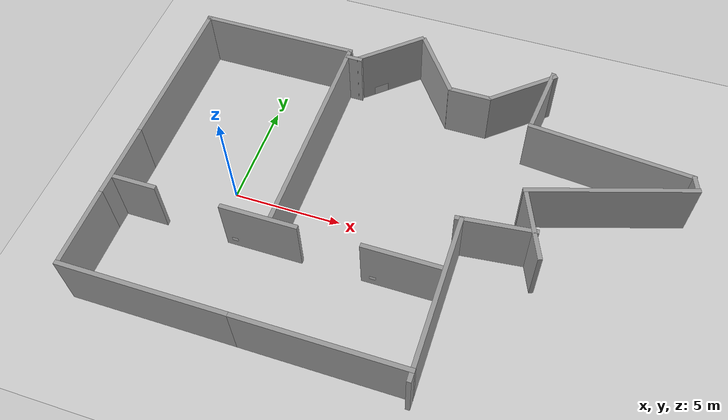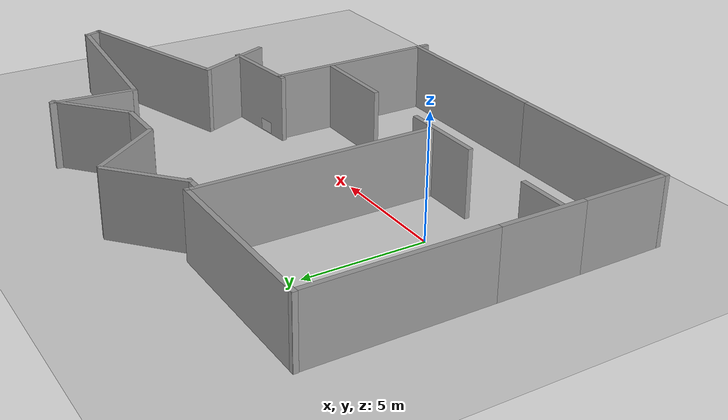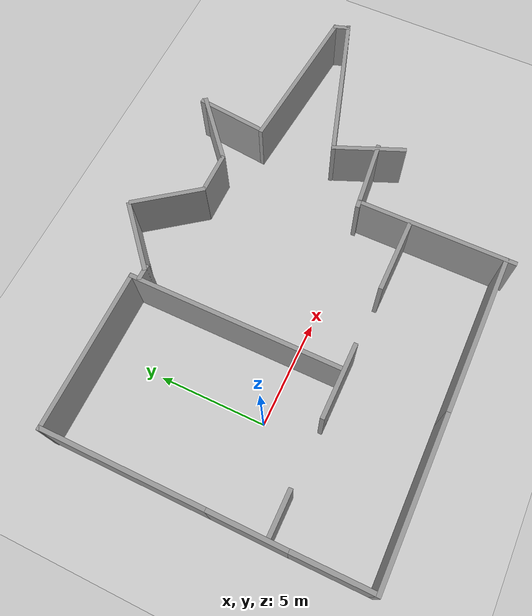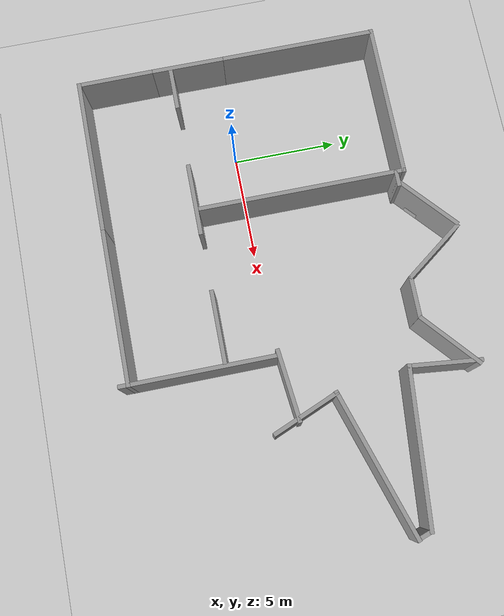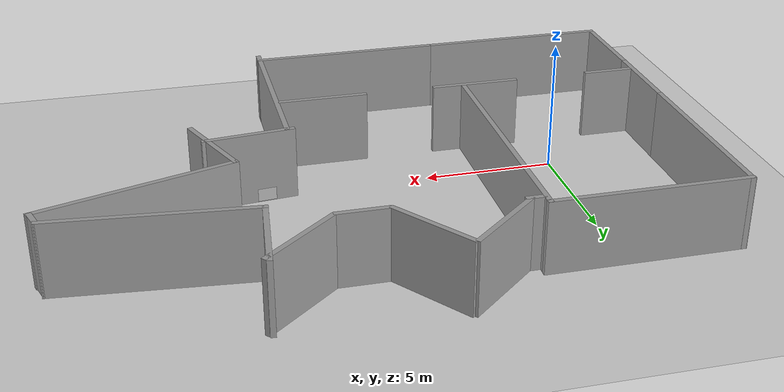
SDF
<sdf version="1.7">
 <world name="default">
  <light name="sun" type="directional">
   <pose>0 0 10 0 -0 0</pose>
   <diffuse>0.8 0.8 0.8 1</diffuse>
   <specular>0.2 0.2 0.2 1</specular>
   <attenuation>
    <range>1000</range>
    <constant>0.9</constant>
    <linear>0.01</linear>
    <quadratic>0.001</quadratic>
   </attenuation>
   <direction>-0.5 0.1 -0.9</direction>
   <spot><inner_angle>0</inner_angle><outer_angle>0</outer_angle><falloff>0</falloff></spot>
  </light>
  <model name="ground_plane">
   <static>1</static>
   <link name="link">
    <collision name="collision">
     <geometry><plane><normal>0 0 1</normal><size>100 100</size></plane></geometry>
     <surface>
      <contact><collide_bitmask>65535</collide_bitmask></contact>
      <friction><ode><mu>100</mu><mu2>50</mu2></ode></friction>
     </surface>
    </collision>
    <visual name="visual">
     <cast_shadows>0</cast_shadows>
     <geometry><plane><normal>0 0 1</normal><size>100 100</size></plane></geometry>
     <material>
      <script><uri>file://media/materials/scripts/gazebo.material</uri><name>Gazebo/Grey</name></script>
     </material>
    </visual>
   </link>
  </model>
  <gravity>0 0 -9.8</gravity>
  <magnetic_field>6e-06 2.3e-05 -4.2e-05</magnetic_field>
  <atmosphere type="adiabatic"/>
  <physics type="ode">
   <real_time_update_rate>1000</real_time_update_rate>
   <max_step_size>0.001</max_step_size>
   <real_time_factor>1</real_time_factor>
   <ode>
    <solver>
     <type>quick</type>
     <iters>150</iters>
     <precon_iters>0</precon_iters>
     <sor>1.4</sor>
     <use_dynamic_moi_rescaling>1</use_dynamic_moi_rescaling>
    </solver>
    <constraints>
     <cfm>1e-05</cfm>
     <erp>0.2</erp>
     <contact_max_correcting_vel>2000</contact_max_correcting_vel>
     <contact_surface_layer>0.01</contact_surface_layer>
    </constraints>
   </ode>
  </physics>
  <scene><ambient>0.4 0.4 0.4 1</ambient><background>0.7 0.7 0.7 1</background><shadows>1</shadows></scene>
  <audio><device>default</device></audio>
  <spherical_coordinates>
   <surface_model>EARTH_WGS84</surface_model>
   <latitude_deg>0</latitude_deg>
   <longitude_deg>0</longitude_deg>
   <elevation>0</elevation>
   <heading_deg>0</heading_deg>
  </spherical_coordinates>
  <model name="grey_wall_small">
   <static>1</static>
   <link name="link">
    <pose>0 0 1.4 0 -0 0</pose>
    <collision name="collision"><geometry><box><size>7.5 0.2 2.8</size></box></geometry></collision>
    <visual name="visual">
     <cast_shadows>0</cast_shadows>
     <geometry><box><size>7.5 0.2 2.8</size></box></geometry>
     <material>
      <script>
       <uri>model://grey_wall_small/materials/scripts</uri>
       <uri>model://grey_wall_small/materials/textures</uri>
       <name>vrc/grey_wall_small</name>
      </script>
     </material>
    </visual>
   </link>
   <pose>-0.732854 7.68071 0 0 -0 0</pose>
  </model>
  <model name="grey_wall_medium_0">
   <static>1</static>
   <link name="link">
    <pose>0 0 1.4 0 -0 0</pose>
    <collision name="collision"><geometry><box><size>10 0.2 2.8</size></box></geometry></collision>
    <visual name="visual">
     <cast_shadows>0</cast_shadows>
     <geometry><box><size>10 0.2 2.8</size></box></geometry>
     <material>
      <script>
       <uri>model://grey_wall_medium/materials/scripts</uri>
       <uri>model://grey_wall_medium/materials/textures</uri>
       <name>vrc/grey_wall_medium</name>
      </script>
     </material>
    </visual>
   </link>
   <pose>2.92051 2.76613 0 0 0 -1.56961</pose>
  </model>
  <model name="grey_wall_smaller_0">
   <static>1</static>
   <link name="link">
    <pose>0 0 1.4 0 -0 0</pose>
    <collision name="collision"><geometry><box><size>3.5 0.2 2.8</size></box></geometry></collision>
    <visual name="visual">
     <cast_shadows>0</cast_shadows>
     <geometry><box><size>3.5 0.2 2.8</size></box></geometry>
     <material>
      <script>
       <uri>model://grey_wall_smaller/materials/scripts</uri>
       <uri>model://grey_wall_smaller/materials/textures</uri>
       <name>vrc/grey_wall_smaller</name>
      </script>
     </material>
    </visual>
   </link>
   <pose>2.42415 -2.33372 0 0 -0 0</pose>
  </model>
  <model name="grey_wall_smaller_1">
   <static>1</static>
   <link name="link">
    <pose>0 0 1.4 0 -0 0</pose>
    <collision name="collision"><geometry><box><size>3.5 0.2 2.8</size></box></geometry></collision>
    <visual name="visual">
     <cast_shadows>0</cast_shadows>
     <geometry><box><size>3.5 0.2 2.8</size></box></geometry>
     <material>
      <script>
       <uri>model://grey_wall_smaller/materials/scripts</uri>
       <uri>model://grey_wall_smaller/materials/textures</uri>
       <name>vrc/grey_wall_smaller</name>
      </script>
     </material>
    </visual>
   </link>
   <pose>8.62694 -2.3333 0 0 -0 0</pose>
  </model>
  <model name="grey_wall_small_0">
   <static>1</static>
   <link name="link">
    <pose>0 0 1.4 0 -0 0</pose>
    <collision name="collision"><geometry><box><size>7.5 0.2 2.8</size></box></geometry></collision>
    <visual name="visual">
     <cast_shadows>0</cast_shadows>
     <geometry><box><size>7.5 0.2 2.8</size></box></geometry>
     <material>
      <script>
       <uri>model://grey_wall_small/materials/scripts</uri>
       <uri>model://grey_wall_small/materials/textures</uri>
       <name>vrc/grey_wall_small</name>
      </script>
     </material>
    </visual>
   </link>
   <pose>-4.35791 4.03296 0 0 0 -1.56915</pose>
  </model>
  <model name="grey_wall_smaller_2">
   <static>1</static>
   <link name="link">
    <pose>0 0 1.4 0 -0 0</pose>
    <collision name="collision"><geometry><box><size>3.5 0.2 2.8</size></box></geometry></collision>
    <visual name="visual">
     <cast_shadows>0</cast_shadows>
     <geometry><box><size>3.5 0.2 2.8</size></box></geometry>
     <material>
      <script>
       <uri>model://grey_wall_smaller/materials/scripts</uri>
       <uri>model://grey_wall_smaller/materials/textures</uri>
       <name>vrc/grey_wall_smaller</name>
      </script>
     </material>
    </visual>
   </link>
   <pose>-4.35344 -1.46455 0 0 0 -1.57176</pose>
  </model>
  <model name="grey_wall_small_1">
   <static>1</static>
   <link name="link">
    <pose>0 0 1.4 0 -0 0</pose>
    <collision name="collision"><geometry><box><size>7.5 0.2 2.8</size></box></geometry></collision>
    <visual name="visual">
     <cast_shadows>0</cast_shadows>
     <geometry><box><size>7.5 0.2 2.8</size></box></geometry>
     <material>
      <script>
       <uri>model://grey_wall_small/materials/scripts</uri>
       <uri>model://grey_wall_small/materials/textures</uri>
       <name>vrc/grey_wall_small</name>
      </script>
     </material>
    </visual>
   </link>
   <pose>-0.682987 -6.80907 0 0 -0 0</pose>
  </model>
  <model name="grey_wall_smaller">
   <static>1</static>
   <link name="link">
    <pose>0 0 1.4 0 -0 0</pose>
    <collision name="collision"><geometry><box><size>3.5 0.2 2.8</size></box></geometry></collision>
    <visual name="visual">
     <cast_shadows>0</cast_shadows>
     <geometry><box><size>3.5 0.2 2.8</size></box></geometry>
     <material>
      <script>
       <uri>model://grey_wall_smaller/materials/scripts</uri>
       <uri>model://grey_wall_smaller/materials/textures</uri>
       <name>vrc/grey_wall_smaller</name>
      </script>
     </material>
    </visual>
   </link>
   <pose>-4.34263 -4.96152 0 0 -0 1.57757</pose>
  </model>
  <model name="grey_wall_small_2">
   <static>1</static>
   <link name="link">
    <pose>0 0 1.4 0 -0 0</pose>
    <collision name="collision"><geometry><box><size>7.5 0.2 2.8</size></box></geometry></collision>
    <visual name="visual">
     <cast_shadows>0</cast_shadows>
     <geometry><box><size>7.5 0.2 2.8</size></box></geometry>
     <material>
      <script>
       <uri>model://grey_wall_small/materials/scripts</uri>
       <uri>model://grey_wall_small/materials/textures</uri>
       <name>vrc/grey_wall_small</name>
      </script>
     </material>
    </visual>
   </link>
   <pose>6.81082 -6.81042 0 0 -0 0</pose>
  </model>
  <model name="grey_wall_small_3">
   <static>1</static>
   <link name="link">
    <pose>0 0 1.4 0 -0 0</pose>
    <collision name="collision"><geometry><box><size>7.5 0.2 2.8</size></box></geometry></collision>
    <visual name="visual">
     <cast_shadows>0</cast_shadows>
     <geometry><box><size>7.5 0.2 2.8</size></box></geometry>
     <material>
      <script>
       <uri>model://grey_wall_small/materials/scripts</uri>
       <uri>model://grey_wall_small/materials/textures</uri>
       <name>vrc/grey_wall_small</name>
      </script>
     </material>
    </visual>
   </link>
   <pose>10.4504 -3.54578 0 0 -0 1.57351</pose>
  </model>
  <model name="grey_wall_tiny">
   <static>1</static>
   <link name="link">
    <pose>0 0 1.4 0 -0 0</pose>
    <collision name="collision"><geometry><box><size>2 0.2 2.8</size></box></geometry></collision>
    <visual name="visual">
     <cast_shadows>0</cast_shadows>
     <geometry><box><size>2 0.2 2.8</size></box></geometry>
     <material>
      <script>
       <uri>model://grey_wall_tiny/materials/scripts</uri>
       <uri>model://grey_wall_tiny/materials/textures</uri>
       <name>vrc/grey_wall_tiny</name>
      </script>
     </material>
    </visual>
   </link>
   <pose>-3.2561 -2.32762 0 0 -0 0</pose>
  </model>
  <model name="red_image">
   <static>1</static>
   <link name="link">
    <visual name="visual">
     <pose>-6 -0.11 0.4 1.57 -0 0</pose>
     <cast_shadows>0</cast_shadows>
     <geometry><plane><normal>0 0 1</normal><size>0.279 0.21</size></plane></geometry>
     <material>
      <script>
       <uri>model://red_image/materials/scripts</uri>
       <uri>model://red_image/materials/textures</uri>
       <name>red_image/Image</name>
      </script>
     </material>
    </visual>
   </link>
   <pose>7.10097 -2.329 0.1 0 -0 0</pose>
  </model>
  <model name="green_image">
   <static>1</static>
   <link name="link">
    <visual name="visual">
     <pose>-6 -0.11 0.4 1.57 -0 0</pose>
     <cast_shadows>0</cast_shadows>
     <geometry><plane><normal>0 0 1</normal><size>0.279 0.21</size></plane></geometry>
     <material>
      <script>
       <uri>model://green_image/materials/scripts</uri>
       <uri>model://green_image/materials/textures</uri>
       <name>green_image/Image</name>
      </script>
     </material>
    </visual>
   </link>
   <pose>13.3991 -2.32966 0.1 0 -0 0</pose>
  </model>
  <light name="user_point_light_0" type="point">
   <pose>3.79344 -5.28695 1 0 -0 0</pose>
   <diffuse>0.5 0.5 0.5 1</diffuse>
   <specular>0.1 0.1 0.1 1</specular>
   <attenuation>
    <range>20</range>
    <constant>0.5</constant>
    <linear>0.01</linear>
    <quadratic>0.001</quadratic>
   </attenuation>
   <cast_shadows>0</cast_shadows>
   <direction>0 0 -1</direction>
   <spot><inner_angle>0</inner_angle><outer_angle>0</outer_angle><falloff>0</falloff></spot>
  </light>
  <model name="grey_wall_smaller_3">
   <static>1</static>
   <link name="link">
    <pose>0 0 1.4 0 -0 0</pose>
    <collision name="collision"><geometry><box><size>3.5 0.2 2.8</size></box></geometry></collision>
    <visual name="visual">
     <cast_shadows>0</cast_shadows>
     <geometry><box><size>3.5 0.2 2.8</size></box></geometry>
     <material>
      <script>
       <uri>model://grey_wall_smaller/materials/scripts</uri>
       <uri>model://grey_wall_smaller/materials/textures</uri>
       <name>vrc/grey_wall_smaller</name>
      </script>
     </material>
    </visual>
   </link>
   <pose>11.8801 0.302721 0 0 -0 0.106907</pose>
  </model>
  <model name="grey_wall_smaller_3_clone">
   <static>1</static>
   <link name="link">
    <pose>0 0 1.4 0 -0 0</pose>
    <collision name="collision"><geometry><box><size>3.5 0.2 2.8</size></box></geometry></collision>
    <visual name="visual">
     <cast_shadows>0</cast_shadows>
     <geometry><box><size>3.5 0.2 2.8</size></box></geometry>
     <material>
      <script>
       <uri>model://grey_wall_smaller/materials/scripts</uri>
       <uri>model://grey_wall_smaller/materials/textures</uri>
       <name>vrc/grey_wall_smaller</name>
      </script>
     </material>
    </visual>
   </link>
   <pose>13.2589 0.830066 0 0 0 -1.17878</pose>
  </model>
  <model name="grey_wall_small_4">
   <static>1</static>
   <link name="link">
    <pose>0 0 1.4 0 -0 0</pose>
    <collision name="collision"><geometry><box><size>7.5 0.2 2.8</size></box></geometry></collision>
    <visual name="visual">
     <cast_shadows>0</cast_shadows>
     <geometry><box><size>7.5 0.2 2.8</size></box></geometry>
     <material>
      <script>
       <uri>model://grey_wall_small/materials/scripts</uri>
       <uri>model://grey_wall_small/materials/textures</uri>
       <name>vrc/grey_wall_small</name>
      </script>
     </material>
    </visual>
   </link>
   <pose>16.0924 3.46442 0 0 -0 0.30632</pose>
  </model>
  <model name="grey_wall_micro">
   <static>1</static>
   <link name="link">
    <pose>0 0 1.4 0 -0 0</pose>
    <collision name="collision"><geometry><box><size>0.8 0.2 2.8</size></box></geometry></collision>
    <visual name="visual">
     <cast_shadows>0</cast_shadows>
     <geometry><box><size>0.8 0.2 2.8</size></box></geometry>
     <material>
      <script>
       <uri>model://grey_wall_micro/materials/scripts</uri>
       <uri>model://grey_wall_micro/materials/textures</uri>
       <name>vrc/grey_wall_micro</name>
      </script>
     </material>
    </visual>
   </link>
   <pose>19.4306 4.88321 0 0 0 -1.2386</pose>
  </model>
  <model name="grey_wall_small_5">
   <static>1</static>
   <link name="link">
    <pose>0 0 1.4 0 -0 0</pose>
    <collision name="collision"><geometry><box><size>7.5 0.2 2.8</size></box></geometry></collision>
    <visual name="visual">
     <cast_shadows>0</cast_shadows>
     <geometry><box><size>7.5 0.2 2.8</size></box></geometry>
     <material>
      <script>
       <uri>model://grey_wall_small/materials/scripts</uri>
       <uri>model://grey_wall_small/materials/textures</uri>
       <name>vrc/grey_wall_small</name>
      </script>
     </material>
    </visual>
   </link>
   <pose>15.7013 5.51458 0 0 0 -0.09102</pose>
  </model>
  <model name="grey_wall_smaller_3_clone_clone">
   <static>1</static>
   <link name="link">
    <pose>0 0 1.4 0 -0 0</pose>
    <collision name="collision"><geometry><box><size>3.5 0.2 2.8</size></box></geometry></collision>
    <visual name="visual">
     <cast_shadows>0</cast_shadows>
     <geometry><box><size>3.5 0.2 2.8</size></box></geometry>
     <material>
      <script>
       <uri>model://grey_wall_smaller/materials/scripts</uri>
       <uri>model://grey_wall_smaller/materials/textures</uri>
       <name>vrc/grey_wall_smaller</name>
      </script>
     </material>
    </visual>
   </link>
   <pose>12.2459 7.48969 0 0 0 -1.67659</pose>
  </model>
  <model name="grey_wall_tiny_0">
   <static>1</static>
   <link name="link">
    <pose>0 0 1.4 0 -0 0</pose>
    <collision name="collision"><geometry><box><size>2 0.2 2.8</size></box></geometry></collision>
    <visual name="visual">
     <cast_shadows>0</cast_shadows>
     <geometry><box><size>2 0.2 2.8</size></box></geometry>
     <material>
      <script>
       <uri>model://grey_wall_tiny/materials/scripts</uri>
       <uri>model://grey_wall_tiny/materials/textures</uri>
       <name>vrc/grey_wall_tiny</name>
      </script>
     </material>
    </visual>
   </link>
   <pose>9.02005 6.83016 0 0 -0 0</pose>
  </model>
  <model name="grey_wall_smaller_3_clone_clone_clone_clone">
   <static>1</static>
   <link name="link">
    <pose>0 0 1.4 0 -0 0</pose>
    <collision name="collision"><geometry><box><size>3.5 0.2 2.8</size></box></geometry></collision>
    <visual name="visual">
     <cast_shadows>0</cast_shadows>
     <geometry><box><size>3.5 0.2 2.8</size></box></geometry>
     <material>
      <script>
       <uri>model://grey_wall_smaller/materials/scripts</uri>
       <uri>model://grey_wall_smaller/materials/textures</uri>
       <name>vrc/grey_wall_smaller</name>
      </script>
     </material>
    </visual>
   </link>
   <pose>7.05772 8.18652 -0 0 -0 2.21349</pose>
  </model>
  <model name="grey_wall_smaller_3_clone_clone_clone_clone_0">
   <static>1</static>
   <link name="link">
    <pose>0 0 1.4 0 -0 0</pose>
    <collision name="collision"><geometry><box><size>3.5 0.2 2.8</size></box></geometry></collision>
    <visual name="visual">
     <cast_shadows>0</cast_shadows>
     <geometry><box><size>3.5 0.2 2.8</size></box></geometry>
     <material>
      <script>
       <uri>model://grey_wall_smaller/materials/scripts</uri>
       <uri>model://grey_wall_smaller/materials/textures</uri>
       <name>vrc/grey_wall_smaller</name>
      </script>
     </material>
    </visual>
   </link>
   <pose>4.69536 8.43592 0 0 0 -2.41568</pose>
  </model>
  <model name="grey_wall_micro_0">
   <static>1</static>
   <link name="link">
    <pose>0 0 1.4 0 -0 0</pose>
    <collision name="collision"><geometry><box><size>0.8 0.2 2.8</size></box></geometry></collision>
    <visual name="visual">
     <cast_shadows>0</cast_shadows>
     <geometry><box><size>0.8 0.2 2.8</size></box></geometry>
     <material>
      <script>
       <uri>model://grey_wall_micro/materials/scripts</uri>
       <uri>model://grey_wall_micro/materials/textures</uri>
       <name>vrc/grey_wall_micro</name>
      </script>
     </material>
    </visual>
   </link>
   <pose>3.25202 7.30208 0 0 -0 0</pose>
  </model>
  <model name="grey_wall_smaller_4">
   <static>1</static>
   <link name="link">
    <pose>0 0 1.4 0 -0 0</pose>
    <collision name="collision"><geometry><box><size>3.5 0.2 2.8</size></box></geometry></collision>
    <visual name="visual">
     <cast_shadows>0</cast_shadows>
     <geometry><box><size>3.5 0.2 2.8</size></box></geometry>
     <material>
      <script>
       <uri>model://grey_wall_smaller/materials/scripts</uri>
       <uri>model://grey_wall_smaller/materials/textures</uri>
       <name>vrc/grey_wall_smaller</name>
      </script>
     </material>
    </visual>
   </link>
   <pose>11.2774 7.95796 -0 0 -0 0.713898</pose>
  </model>
  <model name="window1">
   <static>1</static>
   <link name="window1_link">
    <collision name="body_collision">
     <geometry><plane><size>0.707 0.5</size><normal>0 0 1</normal></plane></geometry>
    </collision>
    <visual name="body_visual">
     <cast_shadows>0</cast_shadows>
     <geometry><plane><size>0.707 0.5</size><normal>0 0 1</normal></plane></geometry>
     <material>
      <script>
       <uri>model://window1/materials/scripts/</uri>
       <uri>model://window1/materials/textures/</uri>
       <name>RepeatedTexture1</name>
      </script>
     </material>
    </visual>
   </link>
   <pose>4.38 8 0.28 1.58 -0 0.73</pose>
  </model>
  <model name="window2">
   <static>1</static>
   <link name="window2_link">
    <collision name="body_collision">
     <geometry><plane><size>0.707 0.5</size><normal>0 0 1</normal></plane></geometry>
    </collision>
    <visual name="body_visual">
     <cast_shadows>0</cast_shadows>
     <geometry><plane><size>0.707 0.5</size><normal>0 0 1</normal></plane></geometry>
     <material>
      <script>
       <uri>model://window2/materials/scripts/</uri>
       <uri>model://window2/materials/textures/</uri>
       <name>RepeatedTexture2</name>
      </script>
     </material>
    </visual>
   </link>
   <pose>11.3 0.35 0.28 1.58 1e-06 -3.03319</pose>
  </model>
  <light name="user_point_light_0_clone" type="point">
   <pose>18.8179 4.84736 1 0 -0 0</pose>
   <diffuse>0.5 0.5 0.5 1</diffuse>
   <specular>0.1 0.1 0.1 1</specular>
   <direction>0 0 -1</direction>
   <attenuation>
    <range>20</range>
    <constant>0.5</constant>
    <linear>0.01</linear>
    <quadratic>0.001</quadratic>
   </attenuation>
   <cast_shadows>0</cast_shadows>
   <spot><inner_angle>0</inner_angle><outer_angle>0</outer_angle><falloff>0</falloff></spot>
  </light>
  <light name="user_point_light_0_clone_clone" type="point">
   <pose>11.1654 1.33325 1 0 -0 0</pose>
   <diffuse>0.5 0.5 0.5 1</diffuse>
   <specular>0.1 0.1 0.1 1</specular>
   <direction>0 0 -1</direction>
   <attenuation>
    <range>20</range>
    <constant>0.5</constant>
    <linear>0.01</linear>
    <quadratic>0.001</quadratic>
   </attenuation>
   <cast_shadows>0</cast_shadows>
   <spot><inner_angle>0</inner_angle><outer_angle>0</outer_angle><falloff>0</falloff></spot>
  </light>
 </world>
</sdf>
